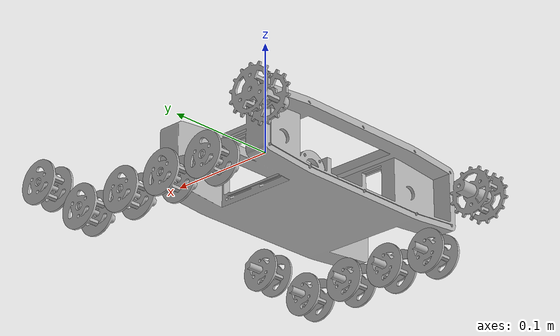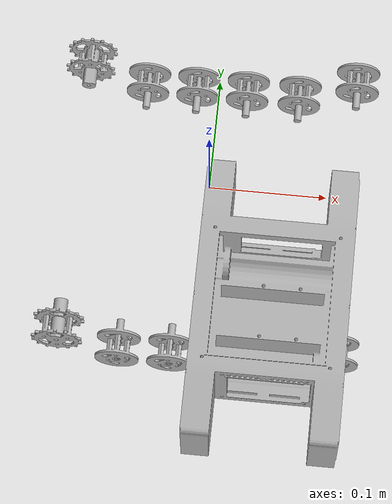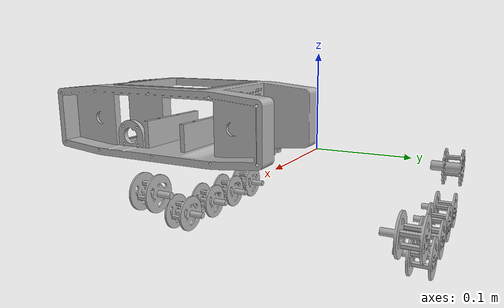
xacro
<?xml version="1.0" ?>
<robot name="TankBot" xmlns:xacro="http://www.ros.org/wiki/xacro">

<xacro:include filename="$(find tankbot_description)/urdf/materials.xacro" />
<xacro:include filename="$(find tankbot_description)/urdf/TankBot.trans" />
<xacro:include filename="$(find tankbot_description)/urdf/TankBot.gazebo" />
<link name="base_link">
  <inertial>
    <origin xyz="-0.017302005462584893 -0.00036911827625168964 -0.024469401199528073" rpy="0 0 0"/>
    <mass value="1.1947089361442738"/>
    <inertia ixx="0.008993" iyy="0.005938" izz="0.014171" ixy="0" iyz="0" ixz="-0.00015"/>
  </inertial>
  <visual>
    <origin xyz="0 0 0" rpy="0 0 0"/>
    <geometry>
      <mesh filename="file://$(find tankbot_description)/meshes/base_link.stl" scale="0.001 0.001 0.001"/>
    </geometry>
    <material name="silver"/>
  </visual>
  <collision>
    <origin xyz="0 0 0" rpy="0 0 0"/>
    <geometry>
      <mesh filename="file://$(find tankbot_description)/meshes/base_link.stl" scale="0.001 0.001 0.001"/>
    </geometry>
  </collision>
</link>

<link name="roda_dentada_v2_1">
  <inertial>
    <origin xyz="-1.5462052341264076e-07 -0.024119269080105546 4.023200826471646e-05" rpy="0 0 0"/>
    <mass value="0.04525596932196063"/>
    <inertia ixx="8e-06" iyy="8e-06" izz="8e-06" ixy="-0.0" iyz="-0.0" ixz="-0.0"/>
  </inertial>
  <visual>
    <origin xyz="0.117325 0.102175 0.033" rpy="0 0 0"/>
    <geometry>
      <mesh filename="file://$(find tankbot_description)/meshes/roda_dentada_v2_1.stl" scale="0.001 0.001 0.001"/>
    </geometry>
    <material name="silver"/>
  </visual>
  <collision>
    <origin xyz="0.117325 0.102175 0.033" rpy="0 0 0"/>
    <geometry>
      <mesh filename="file://$(find tankbot_description)/meshes/roda_dentada_v2_1.stl" scale="0.001 0.001 0.001"/>
    </geometry>
  </collision>
</link>

<link name="roda_lisa_v2__2__1">
  <inertial>
    <origin xyz="2.279268088156705e-08 -0.022205347741865264 6.068612393161921e-08" rpy="0 0 0"/>
    <mass value="0.018687140925594863"/>
    <inertia ixx="3e-06" iyy="3e-06" izz="3e-06" ixy="0.0" iyz="0.0" ixz="-0.0"/>
  </inertial>
  <visual>
    <origin xyz="0.067305 0.104175 0.069726" rpy="0 0 0"/>
    <geometry>
      <mesh filename="file://$(find tankbot_description)/meshes/roda_lisa_v2__2__1.stl" scale="0.001 0.001 0.001"/>
    </geometry>
    <material name="silver"/>
  </visual>
  <collision>
    <origin xyz="0.067305 0.104175 0.069726" rpy="0 0 0"/>
    <geometry>
      <mesh filename="file://$(find tankbot_description)/meshes/roda_lisa_v2__2__1.stl" scale="0.001 0.001 0.001"/>
    </geometry>
  </collision>
</link>

<link name="roda_lisa_v2__3__1">
  <inertial>
    <origin xyz="2.2792680832994794e-08 -0.022205347741865264 6.068612388998584e-08" rpy="0 0 0"/>
    <mass value="0.018687140925594863"/>
    <inertia ixx="3e-06" iyy="3e-06" izz="3e-06" ixy="0.0" iyz="-0.0" ixz="0.0"/>
  </inertial>
  <visual>
    <origin xyz="0.022305 0.104175 0.069726" rpy="0 0 0"/>
    <geometry>
      <mesh filename="file://$(find tankbot_description)/meshes/roda_lisa_v2__3__1.stl" scale="0.001 0.001 0.001"/>
    </geometry>
    <material name="silver"/>
  </visual>
  <collision>
    <origin xyz="0.022305 0.104175 0.069726" rpy="0 0 0"/>
    <geometry>
      <mesh filename="file://$(find tankbot_description)/meshes/roda_lisa_v2__3__1.stl" scale="0.001 0.001 0.001"/>
    </geometry>
  </collision>
</link>

<link name="roda_lisa_v2__4__1">
  <inertial>
    <origin xyz="2.2792680864219816e-08 -0.022205347741865264 6.068612388998584e-08" rpy="0 0 0"/>
    <mass value="0.018687140925594863"/>
    <inertia ixx="3e-06" iyy="3e-06" izz="3e-06" ixy="0.0" iyz="0.0" ixz="0.0"/>
  </inertial>
  <visual>
    <origin xyz="-0.022695 0.104175 0.069726" rpy="0 0 0"/>
    <geometry>
      <mesh filename="file://$(find tankbot_description)/meshes/roda_lisa_v2__4__1.stl" scale="0.001 0.001 0.001"/>
    </geometry>
    <material name="silver"/>
  </visual>
  <collision>
    <origin xyz="-0.022695 0.104175 0.069726" rpy="0 0 0"/>
    <geometry>
      <mesh filename="file://$(find tankbot_description)/meshes/roda_lisa_v2__4__1.stl" scale="0.001 0.001 0.001"/>
    </geometry>
  </collision>
</link>

<link name="roda_lisa_v2__5__1">
  <inertial>
    <origin xyz="2.27926808260559e-08 -0.022205347741865264 6.068612388998584e-08" rpy="0 0 0"/>
    <mass value="0.018687140925594863"/>
    <inertia ixx="3e-06" iyy="3e-06" izz="3e-06" ixy="0.0" iyz="-0.0" ixz="0.0"/>
  </inertial>
  <visual>
    <origin xyz="-0.069695 0.104175 0.069726" rpy="0 0 0"/>
    <geometry>
      <mesh filename="file://$(find tankbot_description)/meshes/roda_lisa_v2__5__1.stl" scale="0.001 0.001 0.001"/>
    </geometry>
    <material name="silver"/>
  </visual>
  <collision>
    <origin xyz="-0.069695 0.104175 0.069726" rpy="0 0 0"/>
    <geometry>
      <mesh filename="file://$(find tankbot_description)/meshes/roda_lisa_v2__5__1.stl" scale="0.001 0.001 0.001"/>
    </geometry>
  </collision>
</link>

<link name="roda_lisa_v2__6__1">
  <inertial>
    <origin xyz="-1.5760077116955262e-07 -0.024205347741865266 -6.245004513516506e-17" rpy="0 0 0"/>
    <mass value="0.018687140925594863"/>
    <inertia ixx="3e-06" iyy="3e-06" izz="3e-06" ixy="0.0" iyz="-0.0" ixz="0.0"/>
  </inertial>
  <visual>
    <origin xyz="-0.120175 0.102175 0.033" rpy="0 0 0"/>
    <geometry>
      <mesh filename="file://$(find tankbot_description)/meshes/roda_lisa_v2__6__1.stl" scale="0.001 0.001 0.001"/>
    </geometry>
    <material name="silver"/>
  </visual>
  <collision>
    <origin xyz="-0.120175 0.102175 0.033" rpy="0 0 0"/>
    <geometry>
      <mesh filename="file://$(find tankbot_description)/meshes/roda_lisa_v2__6__1.stl" scale="0.001 0.001 0.001"/>
    </geometry>
  </collision>
</link>

<link name="roda_dentada_v2__1__1">
  <inertial>
    <origin xyz="-1.546205233710074e-07 0.024119578321121327 -4.0232008264723396e-05" rpy="0 0 0"/>
    <mass value="0.04525596932196063"/>
    <inertia ixx="8e-06" iyy="8e-06" izz="8e-06" ixy="0.0" iyz="-0.0" ixz="0.0"/>
  </inertial>
  <visual>
    <origin xyz="0.117325 -0.101825 0.033" rpy="0 0 0"/>
    <geometry>
      <mesh filename="file://$(find tankbot_description)/meshes/roda_dentada_v2__1__1.stl" scale="0.001 0.001 0.001"/>
    </geometry>
    <material name="silver"/>
  </visual>
  <collision>
    <origin xyz="0.117325 -0.101825 0.033" rpy="0 0 0"/>
    <geometry>
      <mesh filename="file://$(find tankbot_description)/meshes/roda_dentada_v2__1__1.stl" scale="0.001 0.001 0.001"/>
    </geometry>
  </collision>
</link>

<link name="roda_lisa_v2__1__1">
  <inertial>
    <origin xyz="2.2792680923200415e-08 0.022205656982880906 6.068612402876372e-08" rpy="0 0 0"/>
    <mass value="0.018687140925594863"/>
    <inertia ixx="3e-06" iyy="3e-06" izz="3e-06" ixy="-0.0" iyz="0.0" ixz="-0.0"/>
  </inertial>
  <visual>
    <origin xyz="0.067305 -0.103825 0.069726" rpy="0 0 0"/>
    <geometry>
      <mesh filename="file://$(find tankbot_description)/meshes/roda_lisa_v2__1__1.stl" scale="0.001 0.001 0.001"/>
    </geometry>
    <material name="silver"/>
  </visual>
  <collision>
    <origin xyz="0.067305 -0.103825 0.069726" rpy="0 0 0"/>
    <geometry>
      <mesh filename="file://$(find tankbot_description)/meshes/roda_lisa_v2__1__1.stl" scale="0.001 0.001 0.001"/>
    </geometry>
  </collision>
</link>

<link name="roda_lisa_v2__7__1">
  <inertial>
    <origin xyz="2.279268091626152e-08 0.022205656982880906 6.06861240565193e-08" rpy="0 0 0"/>
    <mass value="0.018687140925594863"/>
    <inertia ixx="3e-06" iyy="3e-06" izz="3e-06" ixy="-0.0" iyz="0.0" ixz="-0.0"/>
  </inertial>
  <visual>
    <origin xyz="0.022305 -0.103825 0.069726" rpy="0 0 0"/>
    <geometry>
      <mesh filename="file://$(find tankbot_description)/meshes/roda_lisa_v2__7__1.stl" scale="0.001 0.001 0.001"/>
    </geometry>
    <material name="silver"/>
  </visual>
  <collision>
    <origin xyz="0.022305 -0.103825 0.069726" rpy="0 0 0"/>
    <geometry>
      <mesh filename="file://$(find tankbot_description)/meshes/roda_lisa_v2__7__1.stl" scale="0.001 0.001 0.001"/>
    </geometry>
  </collision>
</link>

<link name="roda_lisa_v2__9__1">
  <inertial>
    <origin xyz="2.2792680878097604e-08 0.022205656982880906 6.06861240565193e-08" rpy="0 0 0"/>
    <mass value="0.018687140925594863"/>
    <inertia ixx="3e-06" iyy="3e-06" izz="3e-06" ixy="-0.0" iyz="0.0" ixz="0.0"/>
  </inertial>
  <visual>
    <origin xyz="-0.022695 -0.103825 0.069726" rpy="0 0 0"/>
    <geometry>
      <mesh filename="file://$(find tankbot_description)/meshes/roda_lisa_v2__9__1.stl" scale="0.001 0.001 0.001"/>
    </geometry>
    <material name="silver"/>
  </visual>
  <collision>
    <origin xyz="-0.022695 -0.103825 0.069726" rpy="0 0 0"/>
    <geometry>
      <mesh filename="file://$(find tankbot_description)/meshes/roda_lisa_v2__9__1.stl" scale="0.001 0.001 0.001"/>
    </geometry>
  </collision>
</link>

<link name="roda_lisa_v2__8__1">
  <inertial>
    <origin xyz="2.2792680909322627e-08 0.022205656982880906 6.06861240565193e-08" rpy="0 0 0"/>
    <mass value="0.018687140925594863"/>
    <inertia ixx="3e-06" iyy="3e-06" izz="3e-06" ixy="-0.0" iyz="0.0" ixz="0.0"/>
  </inertial>
  <visual>
    <origin xyz="-0.069695 -0.103825 0.069726" rpy="0 0 0"/>
    <geometry>
      <mesh filename="file://$(find tankbot_description)/meshes/roda_lisa_v2__8__1.stl" scale="0.001 0.001 0.001"/>
    </geometry>
    <material name="silver"/>
  </visual>
  <collision>
    <origin xyz="-0.069695 -0.103825 0.069726" rpy="0 0 0"/>
    <geometry>
      <mesh filename="file://$(find tankbot_description)/meshes/roda_lisa_v2__8__1.stl" scale="0.001 0.001 0.001"/>
    </geometry>
  </collision>
</link>

<link name="roda_lisa_v2_1">
  <inertial>
    <origin xyz="-1.5760077112791926e-07 0.024205656982880963 6.245004513516506e-17" rpy="0 0 0"/>
    <mass value="0.018687140925594863"/>
    <inertia ixx="3e-06" iyy="3e-06" izz="3e-06" ixy="-0.0" iyz="-0.0" ixz="0.0"/>
  </inertial>
  <visual>
    <origin xyz="-0.120175 -0.101825 0.033" rpy="0 0 0"/>
    <geometry>
      <mesh filename="file://$(find tankbot_description)/meshes/roda_lisa_v2_1.stl" scale="0.001 0.001 0.001"/>
    </geometry>
    <material name="silver"/>
  </visual>
  <collision>
    <origin xyz="-0.120175 -0.101825 0.033" rpy="0 0 0"/>
    <geometry>
      <mesh filename="file://$(find tankbot_description)/meshes/roda_lisa_v2_1.stl" scale="0.001 0.001 0.001"/>
    </geometry>
  </collision>
</link>

<joint name="Revolucionar 13" type="continuous">
  <origin xyz="-0.117325 -0.102175 -0.033" rpy="0 0 0"/>
  <parent link="base_link"/>
  <child link="roda_dentada_v2_1"/>
  <axis xyz="-0.0 -1.0 0.0"/>
</joint>

<joint name="Revolucionar 14" type="continuous">
  <origin xyz="-0.067305 -0.104175 -0.069726" rpy="0 0 0"/>
  <parent link="base_link"/>
  <child link="roda_lisa_v2__2__1"/>
  <axis xyz="-0.0 -1.0 0.0"/>
</joint>

<joint name="Revolucionar 15" type="continuous">
  <origin xyz="-0.022305 -0.104175 -0.069726" rpy="0 0 0"/>
  <parent link="base_link"/>
  <child link="roda_lisa_v2__3__1"/>
  <axis xyz="-0.0 -1.0 0.0"/>
</joint>

<joint name="Revolucionar 16" type="continuous">
  <origin xyz="0.022695 -0.104175 -0.069726" rpy="0 0 0"/>
  <parent link="base_link"/>
  <child link="roda_lisa_v2__4__1"/>
  <axis xyz="-0.0 -1.0 0.0"/>
</joint>

<joint name="Revolucionar 17" type="continuous">
  <origin xyz="0.069695 -0.104175 -0.069726" rpy="0 0 0"/>
  <parent link="base_link"/>
  <child link="roda_lisa_v2__5__1"/>
  <axis xyz="-0.0 -1.0 0.0"/>
</joint>

<joint name="Revolucionar 18" type="continuous">
  <origin xyz="0.120175 -0.102175 -0.033" rpy="0 0 0"/>
  <parent link="base_link"/>
  <child link="roda_lisa_v2__6__1"/>
  <axis xyz="-0.0 -1.0 0.0"/>
</joint>

<joint name="Revolucionar 19" type="continuous">
  <origin xyz="-0.117325 0.101825 -0.033" rpy="0 0 0"/>
  <parent link="base_link"/>
  <child link="roda_dentada_v2__1__1"/>
  <axis xyz="-0.0 -1.0 0.0"/>
</joint>

<joint name="Revolucionar 20" type="continuous">
  <origin xyz="-0.067305 0.103825 -0.069726" rpy="0 0 0"/>
  <parent link="base_link"/>
  <child link="roda_lisa_v2__1__1"/>
  <axis xyz="-0.0 -1.0 0.0"/>
</joint>

<joint name="Revolucionar 21" type="continuous">
  <origin xyz="-0.022305 0.103825 -0.069726" rpy="0 0 0"/>
  <parent link="base_link"/>
  <child link="roda_lisa_v2__7__1"/>
  <axis xyz="-0.0 -1.0 0.0"/>
</joint>

<joint name="Revolucionar 22" type="continuous">
  <origin xyz="0.022695 0.103825 -0.069726" rpy="0 0 0"/>
  <parent link="base_link"/>
  <child link="roda_lisa_v2__9__1"/>
  <axis xyz="-0.0 -1.0 0.0"/>
</joint>

<joint name="Revolucionar 23" type="continuous">
  <origin xyz="0.069695 0.103825 -0.069726" rpy="0 0 0"/>
  <parent link="base_link"/>
  <child link="roda_lisa_v2__8__1"/>
  <axis xyz="-0.0 -1.0 0.0"/>
</joint>

<joint name="Revolucionar 24" type="continuous">
  <origin xyz="0.120175 0.101825 -0.033" rpy="0 0 0"/>
  <parent link="base_link"/>
  <child link="roda_lisa_v2_1"/>
  <axis xyz="-0.0 -1.0 0.0"/>
</joint>

</robot>

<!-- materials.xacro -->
<robot name="TankBot" xmlns:xacro="http://www.ros.org/wiki/xacro" >

<material name="silver">
  <color rgba="0.700 0.700 0.700 1.000"/>
</material>

</robot>

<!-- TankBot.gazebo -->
<robot name="TankBot" xmlns:xacro="http://www.ros.org/wiki/xacro" >

<xacro:property name="body_color" value="Gazebo/Silver" />

<gazebo>
  <plugin name="control" filename="libgazebo_ros_control.so"/>
</gazebo>
<gazebo reference="base_link">
  <material>${body_color}</material>
  <mu1>0.2</mu1>
  <mu2>0.2</mu2>
  <self_collide>true</self_collide>
  <gravity>true</gravity>
</gazebo>

<gazebo reference="roda_dentada_v2_1">
  <material>${body_color}</material>
  <mu1>0.2</mu1>
  <mu2>0.2</mu2>
  <self_collide>true</self_collide>
</gazebo>

<gazebo reference="roda_lisa_v2__2__1">
  <material>${body_color}</material>
  <mu1>0.2</mu1>
  <mu2>0.2</mu2>
  <self_collide>true</self_collide>
</gazebo>

<gazebo reference="roda_lisa_v2__3__1">
  <material>${body_color}</material>
  <mu1>0.2</mu1>
  <mu2>0.2</mu2>
  <self_collide>true</self_collide>
</gazebo>

<gazebo reference="roda_lisa_v2__4__1">
  <material>${body_color}</material>
  <mu1>0.2</mu1>
  <mu2>0.2</mu2>
  <self_collide>true</self_collide>
</gazebo>

<gazebo reference="roda_lisa_v2__5__1">
  <material>${body_color}</material>
  <mu1>0.2</mu1>
  <mu2>0.2</mu2>
  <self_collide>true</self_collide>
</gazebo>

<gazebo reference="roda_lisa_v2__6__1">
  <material>${body_color}</material>
  <mu1>0.2</mu1>
  <mu2>0.2</mu2>
  <self_collide>true</self_collide>
</gazebo>

<gazebo reference="roda_dentada_v2__1__1">
  <material>${body_color}</material>
  <mu1>0.2</mu1>
  <mu2>0.2</mu2>
  <self_collide>true</self_collide>
</gazebo>

<gazebo reference="roda_lisa_v2__1__1">
  <material>${body_color}</material>
  <mu1>0.2</mu1>
  <mu2>0.2</mu2>
  <self_collide>true</self_collide>
</gazebo>

<gazebo reference="roda_lisa_v2__7__1">
  <material>${body_color}</material>
  <mu1>0.2</mu1>
  <mu2>0.2</mu2>
  <self_collide>true</self_collide>
</gazebo>

<gazebo reference="roda_lisa_v2__9__1">
  <material>${body_color}</material>
  <mu1>0.2</mu1>
  <mu2>0.2</mu2>
  <self_collide>true</self_collide>
</gazebo>

<gazebo reference="roda_lisa_v2__8__1">
  <material>${body_color}</material>
  <mu1>0.2</mu1>
  <mu2>0.2</mu2>
  <self_collide>true</self_collide>
</gazebo>

<gazebo reference="roda_lisa_v2_1">
  <material>${body_color}</material>
  <mu1>0.2</mu1>
  <mu2>0.2</mu2>
  <self_collide>true</self_collide>
</gazebo>

</robot>
